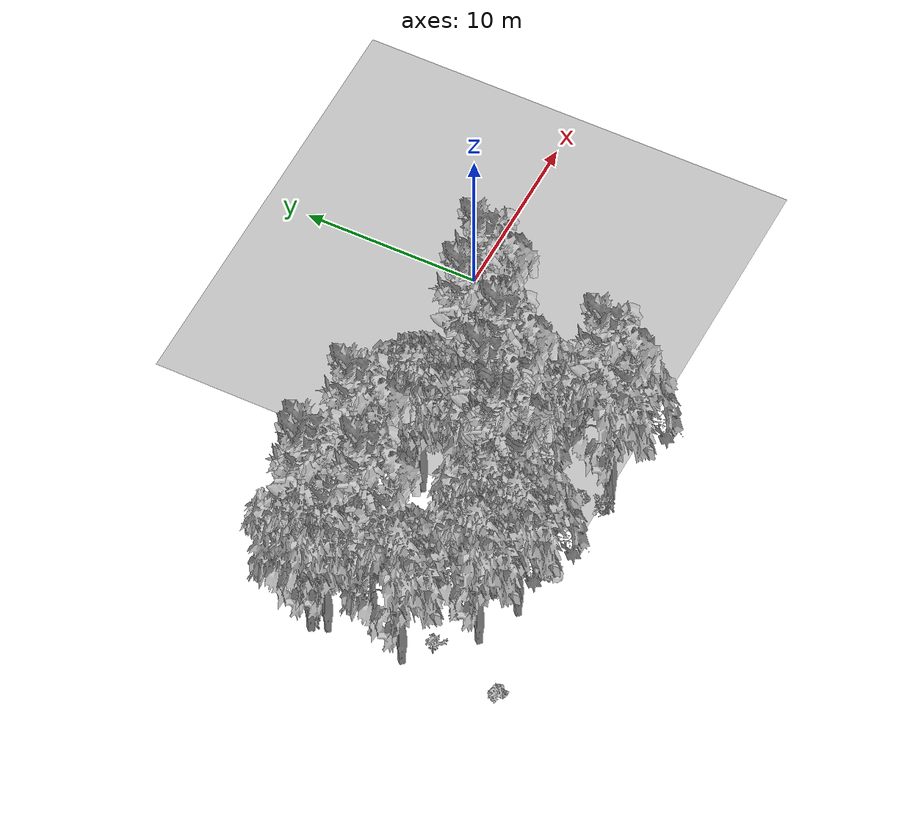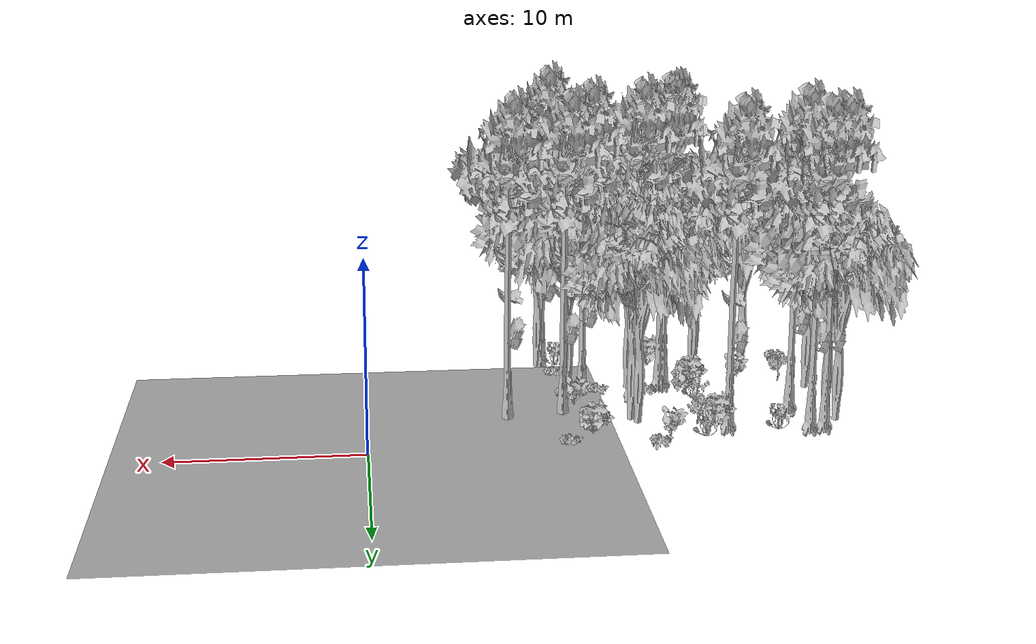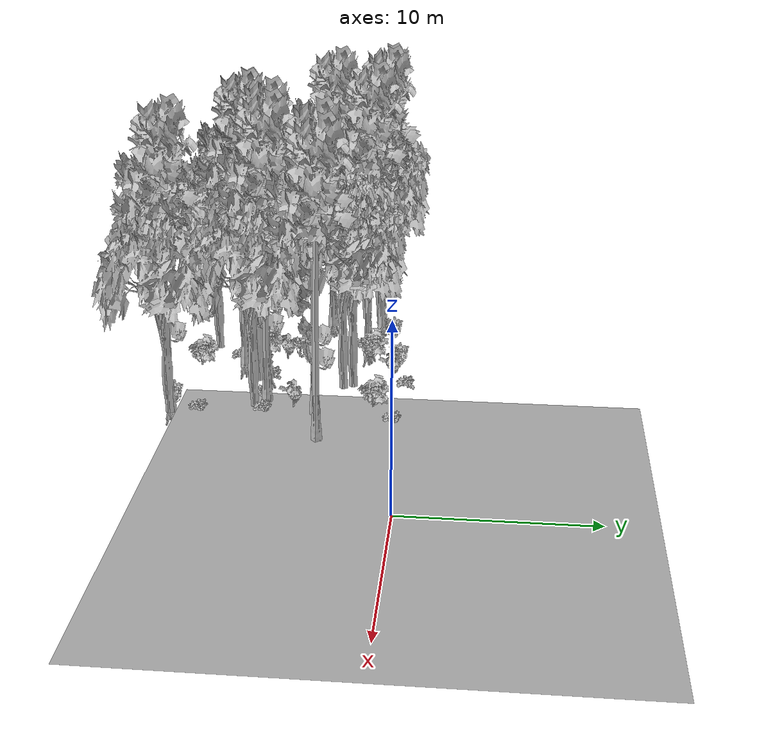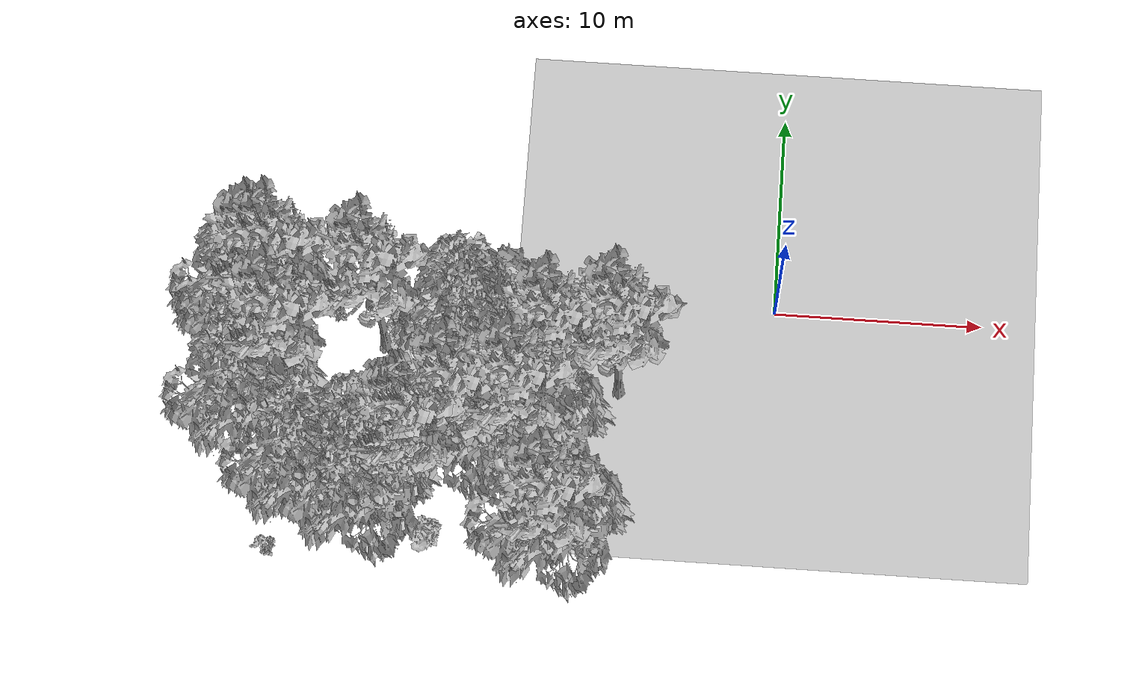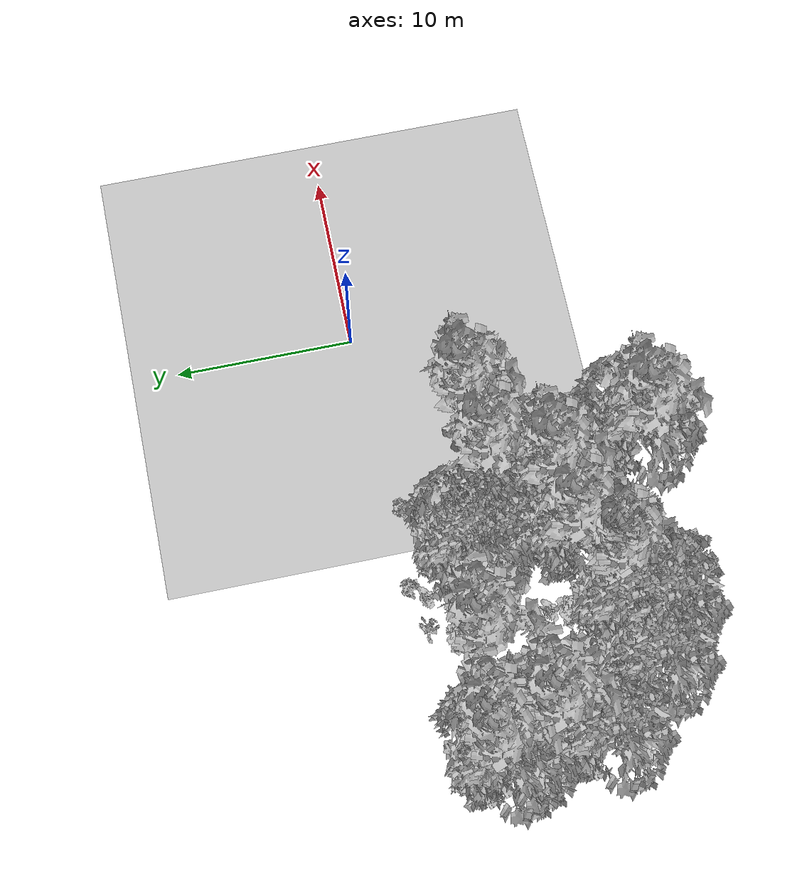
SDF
<sdf version="1.7">
 <world name="default">
  <model name="ground_plane">
   <static>1</static>
   <link name="link">
    <collision name="collision">
     <pose>-50 0 0 0 -0 0</pose>
     <geometry><plane><normal>0 0 1</normal><size>80 80</size></plane></geometry>
     <surface><contact><ode><min_depth>0.01</min_depth><max_vel>0</max_vel></ode></contact></surface>
    </collision>
    <visual name="grass">
     <cast_shadows>0</cast_shadows>
     <geometry>
      <mesh>
       <scale>0.46714285714285714 0.46714285714285714 0.1</scale>
       <uri>file://grass_plane/meshes/grass_plane.dae</uri>
      </mesh>
     </geometry>
    </visual>
   </link>
  </model>
  <model name="Tree 74">
   <static>1</static>
   <pose>-10.250848185144712 -5.017507060955353 0 1.57079 -0 0</pose>
   <link name="link">
    <collision name="collision">
     <geometry><mesh><scale>3.5 5 3.5</scale><uri>model://tree_9/meshes/tree_9.obj</uri></mesh></geometry>
    </collision>
    <visual name="visual">
     <geometry><mesh><scale>3.5 5 3.5</scale><uri>model://tree_9/meshes/tree_9.obj</uri></mesh></geometry>
    </visual>
   </link>
  </model>
  <model name="Tree 76">
   <static>1</static>
   <pose>-21.139243376178463 -10.851959108098956 0 1.57079 -0 0</pose>
   <link name="link">
    <collision name="collision">
     <geometry><mesh><scale>3.5 5 3.5</scale><uri>model://tree_2/meshes/tree_2.obj</uri></mesh></geometry>
    </collision>
    <visual name="visual">
     <geometry><mesh><scale>3.5 5 3.5</scale><uri>model://tree_2/meshes/tree_2.obj</uri></mesh></geometry>
    </visual>
   </link>
  </model>
  <model name="Tree 109">
   <static>1</static>
   <pose>-22.508757964065076 -5.485447300031545 0 1.57079 -0 0</pose>
   <link name="link">
    <collision name="collision">
     <geometry><mesh><scale>3.5 5 3.5</scale><uri>model://tree_9/meshes/tree_9.obj</uri></mesh></geometry>
    </collision>
    <visual name="visual">
     <geometry><mesh><scale>3.5 5 3.5</scale><uri>model://tree_9/meshes/tree_9.obj</uri></mesh></geometry>
    </visual>
   </link>
  </model>
  <model name="Tree 140">
   <static>1</static>
   <pose>-16.23075594337428 -9.888862098122814 0 1.57079 -0 0</pose>
   <link name="link">
    <collision name="collision">
     <geometry><mesh><scale>3.5 5 3.5</scale><uri>model://tree_9/meshes/tree_9.obj</uri></mesh></geometry>
    </collision>
    <visual name="visual">
     <geometry><mesh><scale>3.5 5 3.5</scale><uri>model://tree_9/meshes/tree_9.obj</uri></mesh></geometry>
    </visual>
   </link>
  </model>
  <model name="Tree 165">
   <static>1</static>
   <pose>-18.236618070286184 -10.253338262934388 0 1.57079 -0 0</pose>
   <link name="link">
    <collision name="collision">
     <geometry><mesh><scale>3.5 5 3.5</scale><uri>model://tree_2/meshes/tree_2.obj</uri></mesh></geometry>
    </collision>
    <visual name="visual">
     <geometry><mesh><scale>3.5 5 3.5</scale><uri>model://tree_2/meshes/tree_2.obj</uri></mesh></geometry>
    </visual>
   </link>
  </model>
  <model name="Tree 171">
   <static>1</static>
   <pose>-18.658102432957428 -11.873733359728629 0 1.57079 -0 0</pose>
   <link name="link">
    <collision name="collision">
     <geometry><mesh><scale>3.5 5 3.5</scale><uri>model://tree_2/meshes/tree_2.obj</uri></mesh></geometry>
    </collision>
    <visual name="visual">
     <geometry><mesh><scale>3.5 5 3.5</scale><uri>model://tree_2/meshes/tree_2.obj</uri></mesh></geometry>
    </visual>
   </link>
  </model>
  <model name="Tree 177">
   <static>1</static>
   <pose>-14.048476782025254 -3.3268910196923827 0 1.57079 -0 0</pose>
   <link name="link">
    <collision name="collision">
     <geometry><mesh><scale>3.5 5 3.5</scale><uri>model://tree_2/meshes/tree_2.obj</uri></mesh></geometry>
    </collision>
    <visual name="visual">
     <geometry><mesh><scale>3.5 5 3.5</scale><uri>model://tree_2/meshes/tree_2.obj</uri></mesh></geometry>
    </visual>
   </link>
  </model>
  <model name="Tree 194">
   <static>1</static>
   <pose>-7.301591929228742 -4.545146420035316 0 1.57079 -0 0</pose>
   <link name="link">
    <collision name="collision">
     <geometry><mesh><scale>3.5 5 3.5</scale><uri>model://tree_9/meshes/tree_9.obj</uri></mesh></geometry>
    </collision>
    <visual name="visual">
     <geometry><mesh><scale>3.5 5 3.5</scale><uri>model://tree_9/meshes/tree_9.obj</uri></mesh></geometry>
    </visual>
   </link>
  </model>
  <model name="Tree 291">
   <static>1</static>
   <pose>-16.471141675723047 -9.933995940209073 0 1.57079 -0 0</pose>
   <link name="link">
    <collision name="collision">
     <geometry><mesh><scale>3.5 5 3.5</scale><uri>model://tree_9/meshes/tree_9.obj</uri></mesh></geometry>
    </collision>
    <visual name="visual">
     <geometry><mesh><scale>3.5 5 3.5</scale><uri>model://tree_9/meshes/tree_9.obj</uri></mesh></geometry>
    </visual>
   </link>
  </model>
  <model name="Tree 309">
   <static>1</static>
   <pose>-9.849095229405336 -12.935706295252814 0 1.57079 -0 0</pose>
   <link name="link">
    <collision name="collision">
     <geometry><mesh><scale>3.5 5 3.5</scale><uri>model://tree_2/meshes/tree_2.obj</uri></mesh></geometry>
    </collision>
    <visual name="visual">
     <geometry><mesh><scale>3.5 5 3.5</scale><uri>model://tree_2/meshes/tree_2.obj</uri></mesh></geometry>
    </visual>
   </link>
  </model>
  <model name="Tree 318">
   <static>1</static>
   <pose>-14.434712383695551 -8.2754532119192 0 1.57079 -0 0</pose>
   <link name="link">
    <collision name="collision">
     <geometry><mesh><scale>3.5 5 3.5</scale><uri>model://tree_9/meshes/tree_9.obj</uri></mesh></geometry>
    </collision>
    <visual name="visual">
     <geometry><mesh><scale>3.5 5 3.5</scale><uri>model://tree_9/meshes/tree_9.obj</uri></mesh></geometry>
    </visual>
   </link>
  </model>
  <model name="Tree 319">
   <static>1</static>
   <pose>-23.992685876087407 -3.5521627592154346 0 1.57079 -0 0</pose>
   <link name="link">
    <collision name="collision">
     <geometry><mesh><scale>3.5 5 3.5</scale><uri>model://tree_2/meshes/tree_2.obj</uri></mesh></geometry>
    </collision>
    <visual name="visual">
     <geometry><mesh><scale>3.5 5 3.5</scale><uri>model://tree_2/meshes/tree_2.obj</uri></mesh></geometry>
    </visual>
   </link>
  </model>
  <model name="Tree 352">
   <static>1</static>
   <pose>-22.845196500736428 -2.430688687945036 0 1.57079 -0 0</pose>
   <link name="link">
    <collision name="collision">
     <geometry><mesh><scale>3.5 5 3.5</scale><uri>model://tree_9/meshes/tree_9.obj</uri></mesh></geometry>
    </collision>
    <visual name="visual">
     <geometry><mesh><scale>3.5 5 3.5</scale><uri>model://tree_9/meshes/tree_9.obj</uri></mesh></geometry>
    </visual>
   </link>
  </model>
  <model name="Tree 394">
   <static>1</static>
   <pose>-24.061600159868192 -7.873990937012884 0 1.57079 -0 0</pose>
   <link name="link">
    <collision name="collision">
     <geometry><mesh><scale>3.5 5 3.5</scale><uri>model://tree_2/meshes/tree_2.obj</uri></mesh></geometry>
    </collision>
    <visual name="visual">
     <geometry><mesh><scale>3.5 5 3.5</scale><uri>model://tree_2/meshes/tree_2.obj</uri></mesh></geometry>
    </visual>
   </link>
  </model>
  <model name="Tree 439">
   <static>1</static>
   <pose>-18.639837513014132 -2.912533968185926 0 1.57079 -0 0</pose>
   <link name="link">
    <collision name="collision">
     <geometry><mesh><scale>3.5 5 3.5</scale><uri>model://tree_9/meshes/tree_9.obj</uri></mesh></geometry>
    </collision>
    <visual name="visual">
     <geometry><mesh><scale>3.5 5 3.5</scale><uri>model://tree_9/meshes/tree_9.obj</uri></mesh></geometry>
    </visual>
   </link>
  </model>
  <model name="Tree 488">
   <static>1</static>
   <pose>-14.362595083196645 -8.754529178079178 0 1.57079 -0 0</pose>
   <link name="link">
    <collision name="collision">
     <geometry><mesh><scale>3.5 5 3.5</scale><uri>model://tree_2/meshes/tree_2.obj</uri></mesh></geometry>
    </collision>
    <visual name="visual">
     <geometry><mesh><scale>3.5 5 3.5</scale><uri>model://tree_2/meshes/tree_2.obj</uri></mesh></geometry>
    </visual>
   </link>
  </model>
  <model name="Tree 520">
   <static>1</static>
   <pose>-11.645208649908447 -7.850675894062206 0 1.57079 -0 0</pose>
   <link name="link">
    <collision name="collision">
     <geometry><mesh><scale>3.5 5 3.5</scale><uri>model://tree_9/meshes/tree_9.obj</uri></mesh></geometry>
    </collision>
    <visual name="visual">
     <geometry><mesh><scale>3.5 5 3.5</scale><uri>model://tree_9/meshes/tree_9.obj</uri></mesh></geometry>
    </visual>
   </link>
  </model>
  <model name="Tree 527">
   <static>1</static>
   <pose>-24.324673490152733 -2.7179812769743705 0 1.57079 -0 0</pose>
   <link name="link">
    <collision name="collision">
     <geometry><mesh><scale>3.5 5 3.5</scale><uri>model://tree_2/meshes/tree_2.obj</uri></mesh></geometry>
    </collision>
    <visual name="visual">
     <geometry><mesh><scale>3.5 5 3.5</scale><uri>model://tree_2/meshes/tree_2.obj</uri></mesh></geometry>
    </visual>
   </link>
  </model>
  <model name="Tree 549">
   <static>1</static>
   <pose>-11.03052745354832 -8.451208449197889 0 1.57079 -0 0</pose>
   <link name="link">
    <collision name="collision">
     <geometry><mesh><scale>3.5 5 3.5</scale><uri>model://tree_2/meshes/tree_2.obj</uri></mesh></geometry>
    </collision>
    <visual name="visual">
     <geometry><mesh><scale>3.5 5 3.5</scale><uri>model://tree_2/meshes/tree_2.obj</uri></mesh></geometry>
    </visual>
   </link>
  </model>
  <model name="Tree 586">
   <static>1</static>
   <pose>-10.008851497564958 -12.899322642269382 0 1.57079 -0 0</pose>
   <link name="link">
    <collision name="collision">
     <geometry><mesh><scale>3.5 5 3.5</scale><uri>model://tree_9/meshes/tree_9.obj</uri></mesh></geometry>
    </collision>
    <visual name="visual">
     <geometry><mesh><scale>3.5 5 3.5</scale><uri>model://tree_9/meshes/tree_9.obj</uri></mesh></geometry>
    </visual>
   </link>
  </model>
  <model name="Tree 596">
   <static>1</static>
   <pose>-23.625516361709384 -2.5401262698661498 0 1.57079 -0 0</pose>
   <link name="link">
    <collision name="collision">
     <geometry><mesh><scale>3.5 5 3.5</scale><uri>model://tree_9/meshes/tree_9.obj</uri></mesh></geometry>
    </collision>
    <visual name="visual">
     <geometry><mesh><scale>3.5 5 3.5</scale><uri>model://tree_9/meshes/tree_9.obj</uri></mesh></geometry>
    </visual>
   </link>
  </model>
  <model name="Tree 632">
   <static>1</static>
   <pose>-13.761700230095474 -3.845047202602103 0 1.57079 -0 0</pose>
   <link name="link">
    <collision name="collision">
     <geometry><mesh><scale>3.5 5 3.5</scale><uri>model://tree_2/meshes/tree_2.obj</uri></mesh></geometry>
    </collision>
    <visual name="visual">
     <geometry><mesh><scale>3.5 5 3.5</scale><uri>model://tree_2/meshes/tree_2.obj</uri></mesh></geometry>
    </visual>
   </link>
  </model>
  <model name="Bush 19">
   <static>1</static>
   <pose>-14.638901185203895 -0.39829900706403976 0 1.57079 -0 0</pose>
   <link name="link">
    <collision name="collision">
     <geometry><mesh><scale>2 2 2</scale><uri>model://bush_2/meshes/bush_2.obj</uri></mesh></geometry>
     <surface><contact><collide_without_contact>false</collide_without_contact></contact></surface>
    </collision>
    <visual name="visual">
     <geometry><mesh><scale>2 2 2</scale><uri>model://bush_2/meshes/bush_2.obj</uri></mesh></geometry>
    </visual>
   </link>
  </model>
  <model name="Bush 21">
   <static>1</static>
   <pose>-15.295873381173664 -1.1969993962748617 0 1.57079 -0 0</pose>
   <link name="link">
    <collision name="collision">
     <geometry><mesh><scale>2 2 2</scale><uri>model://bush_0/meshes/bush_0.obj</uri></mesh></geometry>
     <surface><contact><collide_without_contact>false</collide_without_contact></contact></surface>
    </collision>
    <visual name="visual">
     <geometry><mesh><scale>2 2 2</scale><uri>model://bush_0/meshes/bush_0.obj</uri></mesh></geometry>
    </visual>
   </link>
  </model>
  <model name="Bush 35">
   <static>1</static>
   <pose>-17.11748661516481 -0.9993794827294877 0 1.57079 -0 0</pose>
   <link name="link">
    <collision name="collision">
     <geometry><mesh><scale>2 2 2</scale><uri>model://bush_4/meshes/bush_4.obj</uri></mesh></geometry>
     <surface><contact><collide_without_contact>false</collide_without_contact></contact></surface>
    </collision>
    <visual name="visual">
     <geometry><mesh><scale>2 2 2</scale><uri>model://bush_4/meshes/bush_4.obj</uri></mesh></geometry>
    </visual>
   </link>
  </model>
  <model name="Bush 69">
   <static>1</static>
   <pose>-10.12527438644117 -0.8097748682703241 0 1.57079 -0 0</pose>
   <link name="link">
    <collision name="collision">
     <geometry><mesh><scale>2 2 2</scale><uri>model://bush_2/meshes/bush_2.obj</uri></mesh></geometry>
     <surface><contact><collide_without_contact>false</collide_without_contact></contact></surface>
    </collision>
    <visual name="visual">
     <geometry><mesh><scale>2 2 2</scale><uri>model://bush_2/meshes/bush_2.obj</uri></mesh></geometry>
    </visual>
   </link>
  </model>
  <model name="Bush 125">
   <static>1</static>
   <pose>-17.30335272512375 -7.547019679886489 0 1.57079 -0 0</pose>
   <link name="link">
    <collision name="collision">
     <geometry><mesh><scale>2 2 2</scale><uri>model://bush_0/meshes/bush_0.obj</uri></mesh></geometry>
     <surface><contact><collide_without_contact>false</collide_without_contact></contact></surface>
    </collision>
    <visual name="visual">
     <geometry><mesh><scale>2 2 2</scale><uri>model://bush_0/meshes/bush_0.obj</uri></mesh></geometry>
    </visual>
   </link>
  </model>
  <model name="Bush 128">
   <static>1</static>
   <pose>-20.992275362426852 -1.644289493588758 0 1.57079 -0 0</pose>
   <link name="link">
    <collision name="collision">
     <geometry><mesh><scale>2 2 2</scale><uri>model://bush_4/meshes/bush_4.obj</uri></mesh></geometry>
     <surface><contact><collide_without_contact>false</collide_without_contact></contact></surface>
    </collision>
    <visual name="visual">
     <geometry><mesh><scale>2 2 2</scale><uri>model://bush_4/meshes/bush_4.obj</uri></mesh></geometry>
    </visual>
   </link>
  </model>
  <model name="Bush 137">
   <static>1</static>
   <pose>-23.585421497688987 -13.19485517457597 0 1.57079 -0 0</pose>
   <link name="link">
    <collision name="collision">
     <geometry><mesh><scale>2 2 2</scale><uri>model://bush_2/meshes/bush_2.obj</uri></mesh></geometry>
     <surface><contact><collide_without_contact>false</collide_without_contact></contact></surface>
    </collision>
    <visual name="visual">
     <geometry><mesh><scale>2 2 2</scale><uri>model://bush_2/meshes/bush_2.obj</uri></mesh></geometry>
    </visual>
   </link>
  </model>
  <model name="Bush 145">
   <static>1</static>
   <pose>-11.021573329098143 -6.285454689783627 0 1.57079 -0 0</pose>
   <link name="link">
    <collision name="collision">
     <geometry><mesh><scale>2 2 2</scale><uri>model://bush_0/meshes/bush_0.obj</uri></mesh></geometry>
     <surface><contact><collide_without_contact>false</collide_without_contact></contact></surface>
    </collision>
    <visual name="visual">
     <geometry><mesh><scale>2 2 2</scale><uri>model://bush_0/meshes/bush_0.obj</uri></mesh></geometry>
    </visual>
   </link>
  </model>
  <model name="Bush 155">
   <static>1</static>
   <pose>-17.338735324600325 -8.955101221130342 0 1.57079 -0 0</pose>
   <link name="link">
    <collision name="collision">
     <geometry><mesh><scale>2 2 2</scale><uri>model://bush_2/meshes/bush_2.obj</uri></mesh></geometry>
     <surface><contact><collide_without_contact>false</collide_without_contact></contact></surface>
    </collision>
    <visual name="visual">
     <geometry><mesh><scale>2 2 2</scale><uri>model://bush_2/meshes/bush_2.obj</uri></mesh></geometry>
    </visual>
   </link>
  </model>
  <model name="Bush 162">
   <static>1</static>
   <pose>-17.641665009390156 -6.764074208892936 0 1.57079 -0 0</pose>
   <link name="link">
    <collision name="collision">
     <geometry><mesh><scale>2 2 2</scale><uri>model://bush_4/meshes/bush_4.obj</uri></mesh></geometry>
     <surface><contact><collide_without_contact>false</collide_without_contact></contact></surface>
    </collision>
    <visual name="visual">
     <geometry><mesh><scale>2 2 2</scale><uri>model://bush_4/meshes/bush_4.obj</uri></mesh></geometry>
    </visual>
   </link>
  </model>
  <model name="Bush 198">
   <static>1</static>
   <pose>-10.754603418947308 -7.988139696423758 0 1.57079 -0 0</pose>
   <link name="link">
    <collision name="collision">
     <geometry><mesh><scale>2 2 2</scale><uri>model://bush_2/meshes/bush_2.obj</uri></mesh></geometry>
     <surface><contact><collide_without_contact>false</collide_without_contact></contact></surface>
    </collision>
    <visual name="visual">
     <geometry><mesh><scale>2 2 2</scale><uri>model://bush_2/meshes/bush_2.obj</uri></mesh></geometry>
    </visual>
   </link>
  </model>
  <model name="Bush 222">
   <static>1</static>
   <pose>-16.968347996046145 -2.739558187958771 0 1.57079 -0 0</pose>
   <link name="link">
    <collision name="collision">
     <geometry><mesh><scale>2 2 2</scale><uri>model://bush_5/meshes/bush_5.obj</uri></mesh></geometry>
     <surface><contact><collide_without_contact>false</collide_without_contact></contact></surface>
    </collision>
    <visual name="visual">
     <geometry><mesh><scale>2 2 2</scale><uri>model://bush_5/meshes/bush_5.obj</uri></mesh></geometry>
    </visual>
   </link>
  </model>
  <model name="Bush 284">
   <static>1</static>
   <pose>-17.61960798664076 -10.424023359770594 0 1.57079 -0 0</pose>
   <link name="link">
    <collision name="collision">
     <geometry><mesh><scale>2 2 2</scale><uri>model://bush_2/meshes/bush_2.obj</uri></mesh></geometry>
     <surface><contact><collide_without_contact>false</collide_without_contact></contact></surface>
    </collision>
    <visual name="visual">
     <geometry><mesh><scale>2 2 2</scale><uri>model://bush_2/meshes/bush_2.obj</uri></mesh></geometry>
    </visual>
   </link>
  </model>
  <model name="Bush 306">
   <static>1</static>
   <pose>-12.576499897468764 -8.399939910006182 0 1.57079 -0 0</pose>
   <link name="link">
    <collision name="collision">
     <geometry><mesh><scale>2 2 2</scale><uri>model://bush_2/meshes/bush_2.obj</uri></mesh></geometry>
     <surface><contact><collide_without_contact>false</collide_without_contact></contact></surface>
    </collision>
    <visual name="visual">
     <geometry><mesh><scale>2 2 2</scale><uri>model://bush_2/meshes/bush_2.obj</uri></mesh></geometry>
    </visual>
   </link>
  </model>
  <model name="Bush 397">
   <static>1</static>
   <pose>-20.29079695073869 -9.289047191659812 0 1.57079 -0 0</pose>
   <link name="link">
    <collision name="collision">
     <geometry><mesh><scale>2 2 2</scale><uri>model://bush_0/meshes/bush_0.obj</uri></mesh></geometry>
     <surface><contact><collide_without_contact>false</collide_without_contact></contact></surface>
    </collision>
    <visual name="visual">
     <geometry><mesh><scale>2 2 2</scale><uri>model://bush_0/meshes/bush_0.obj</uri></mesh></geometry>
    </visual>
   </link>
  </model>
  <model name="Bush 412">
   <static>1</static>
   <pose>-11.456745218677597 -1.950599353434768 0 1.57079 -0 0</pose>
   <link name="link">
    <collision name="collision">
     <geometry><mesh><scale>2 2 2</scale><uri>model://bush_1/meshes/bush_1.obj</uri></mesh></geometry>
     <surface><contact><collide_without_contact>false</collide_without_contact></contact></surface>
    </collision>
    <visual name="visual">
     <geometry><mesh><scale>2 2 2</scale><uri>model://bush_1/meshes/bush_1.obj</uri></mesh></geometry>
    </visual>
   </link>
  </model>
  <model name="Bush 418">
   <static>1</static>
   <pose>-22.77346424583211 -9.057506057968034 0 1.57079 -0 0</pose>
   <link name="link">
    <collision name="collision">
     <geometry><mesh><scale>2 2 2</scale><uri>model://bush_5/meshes/bush_5.obj</uri></mesh></geometry>
     <surface><contact><collide_without_contact>false</collide_without_contact></contact></surface>
    </collision>
    <visual name="visual">
     <geometry><mesh><scale>2 2 2</scale><uri>model://bush_5/meshes/bush_5.obj</uri></mesh></geometry>
    </visual>
   </link>
  </model>
  <model name="Bush 425">
   <static>1</static>
   <pose>-10.835778924565563 -12.963043794754796 0 1.57079 -0 0</pose>
   <link name="link">
    <collision name="collision">
     <geometry><mesh><scale>2 2 2</scale><uri>model://bush_4/meshes/bush_4.obj</uri></mesh></geometry>
     <surface><contact><collide_without_contact>false</collide_without_contact></contact></surface>
    </collision>
    <visual name="visual">
     <geometry><mesh><scale>2 2 2</scale><uri>model://bush_4/meshes/bush_4.obj</uri></mesh></geometry>
    </visual>
   </link>
  </model>
  <model name="Bush 490">
   <static>1</static>
   <pose>-16.015190649254183 -12.414857839414346 0 1.57079 -0 0</pose>
   <link name="link">
    <collision name="collision">
     <geometry><mesh><scale>2 2 2</scale><uri>model://bush_1/meshes/bush_1.obj</uri></mesh></geometry>
     <surface><contact><collide_without_contact>false</collide_without_contact></contact></surface>
    </collision>
    <visual name="visual">
     <geometry><mesh><scale>2 2 2</scale><uri>model://bush_1/meshes/bush_1.obj</uri></mesh></geometry>
    </visual>
   </link>
  </model>
  <model name="Bush 502">
   <static>1</static>
   <pose>-17.883605287009953 -2.614109283066277 0 1.57079 -0 0</pose>
   <link name="link">
    <collision name="collision">
     <geometry><mesh><scale>2 2 2</scale><uri>model://bush_1/meshes/bush_1.obj</uri></mesh></geometry>
     <surface><contact><collide_without_contact>false</collide_without_contact></contact></surface>
    </collision>
    <visual name="visual">
     <geometry><mesh><scale>2 2 2</scale><uri>model://bush_1/meshes/bush_1.obj</uri></mesh></geometry>
    </visual>
   </link>
  </model>
  <model name="Bush 550">
   <static>1</static>
   <pose>-17.69183116267154 -8.807389786679856 0 1.57079 -0 0</pose>
   <link name="link">
    <collision name="collision">
     <geometry><mesh><scale>2 2 2</scale><uri>model://bush_1/meshes/bush_1.obj</uri></mesh></geometry>
     <surface><contact><collide_without_contact>false</collide_without_contact></contact></surface>
    </collision>
    <visual name="visual">
     <geometry><mesh><scale>2 2 2</scale><uri>model://bush_1/meshes/bush_1.obj</uri></mesh></geometry>
    </visual>
   </link>
  </model>
  <model name="Bush 621">
   <static>1</static>
   <pose>-15.20839534700962 -8.156760725359085 0 1.57079 -0 0</pose>
   <link name="link">
    <collision name="collision">
     <geometry><mesh><scale>2 2 2</scale><uri>model://bush_2/meshes/bush_2.obj</uri></mesh></geometry>
     <surface><contact><collide_without_contact>false</collide_without_contact></contact></surface>
    </collision>
    <visual name="visual">
     <geometry><mesh><scale>2 2 2</scale><uri>model://bush_2/meshes/bush_2.obj</uri></mesh></geometry>
    </visual>
   </link>
  </model>
  <model name="Bush 639">
   <static>1</static>
   <pose>-10.537336765975411 -11.506882694507865 0 1.57079 -0 0</pose>
   <link name="link">
    <collision name="collision">
     <geometry><mesh><scale>2 2 2</scale><uri>model://bush_2/meshes/bush_2.obj</uri></mesh></geometry>
     <surface><contact><collide_without_contact>false</collide_without_contact></contact></surface>
    </collision>
    <visual name="visual">
     <geometry><mesh><scale>2 2 2</scale><uri>model://bush_2/meshes/bush_2.obj</uri></mesh></geometry>
    </visual>
   </link>
  </model>
 </world>
</sdf>
